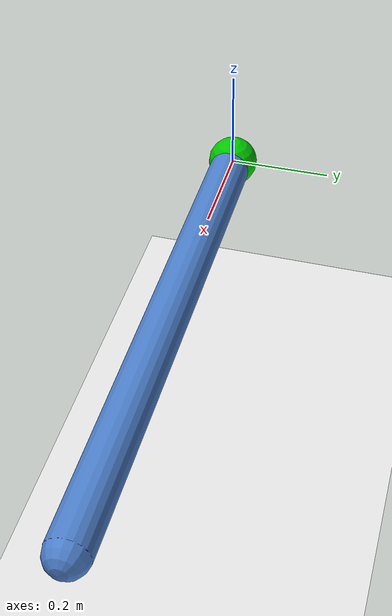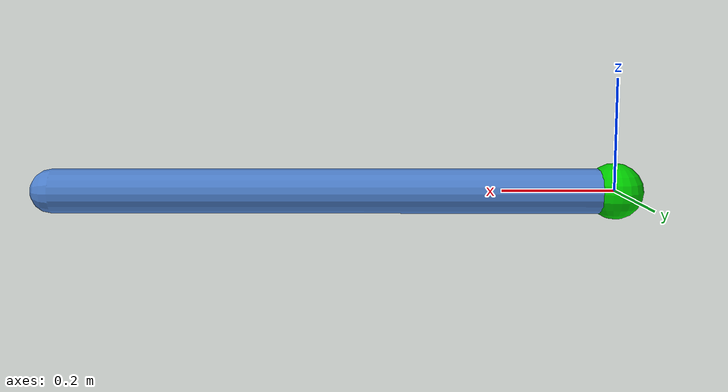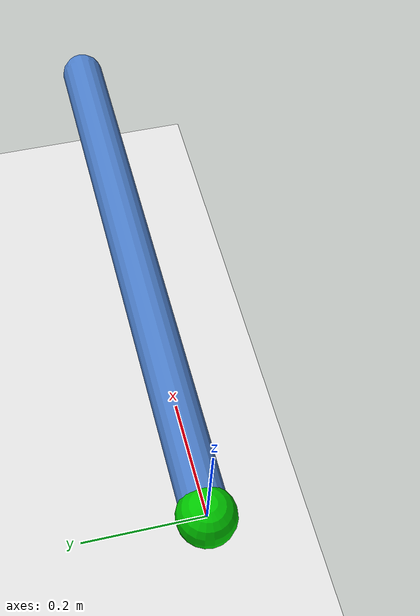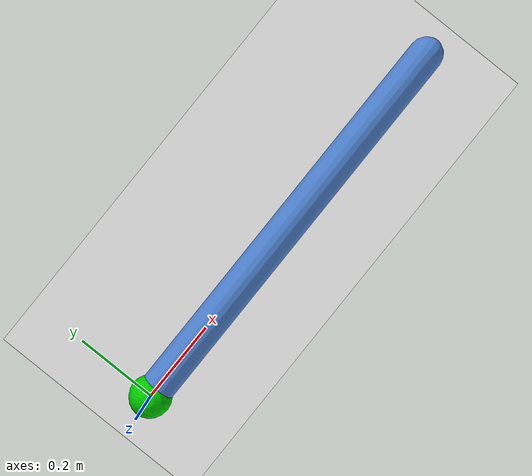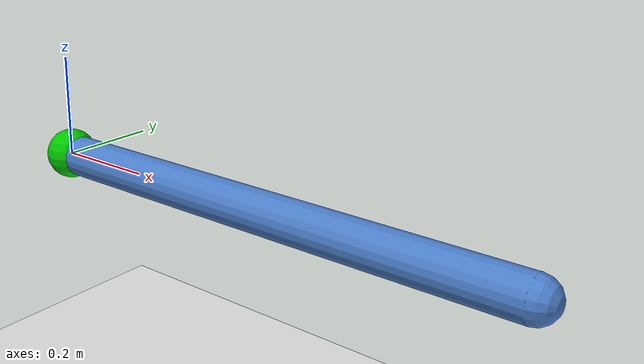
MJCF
<mujoco model="one_link_arm">
    <option gravity="0 0 0" timestep="0.001"/>

    <default>
        <joint damping="0.5"/>
        <geom rgba="0.3 0.5 0.8 1" contype="0" conaffinity="0"/>
    </default>

    <worldbody>
        <!-- Ground plane and lighting (provided) -->
        <light name="top" pos="0 0 2" dir="0 0 -1" diffuse="1 1 1"/>
        <geom name="floor" type="plane" size="3 3 0.1" rgba="0.9 0.9 0.9 1"
              pos="0 0 -0.5" contype="0" conaffinity="0"/>

        <!-- Base marker (provided) -->
        <site name="base" pos="0 0 0" size="0.05" rgba="0 0.8 0 1"/>

        <body name="link1" pos="0 0 0">
            <joint name="joint1" type="hinge" axis="0 0 1"/>
            <geom name="link1" type="capsule" fromto="0 0 0 1 0 0" size="0.04"/>
            <site name="end_effector" pos="1 0 0" size="0.03"/>
        </body>
    </worldbody>

    <actuator>
        <position name="joint1_ctrl" joint="joint1" kp="10"/>
    </actuator>

</mujoco>
